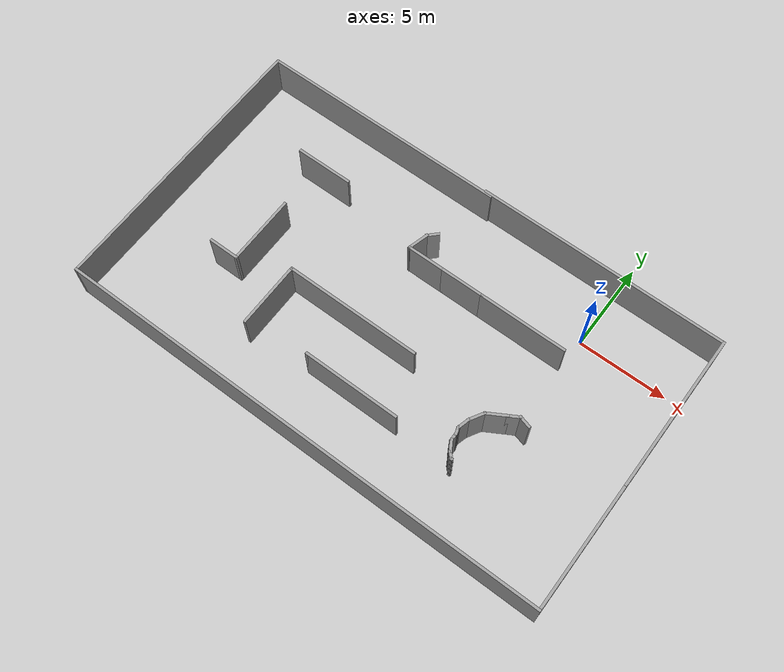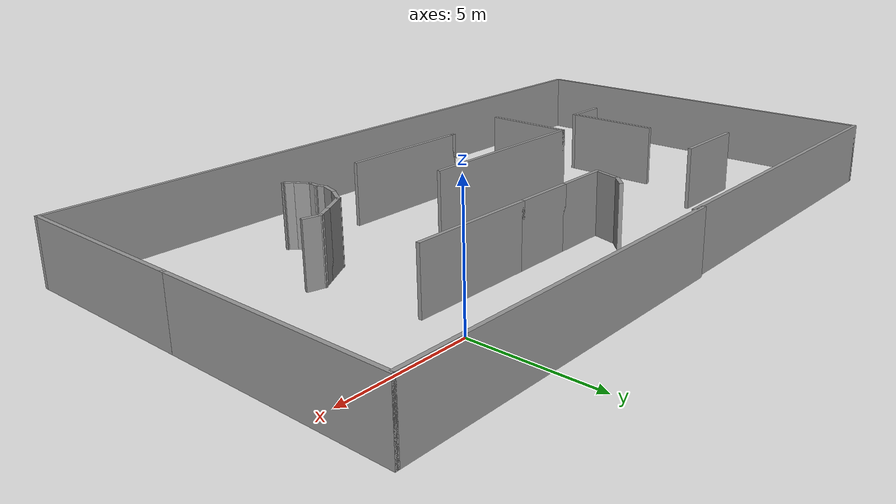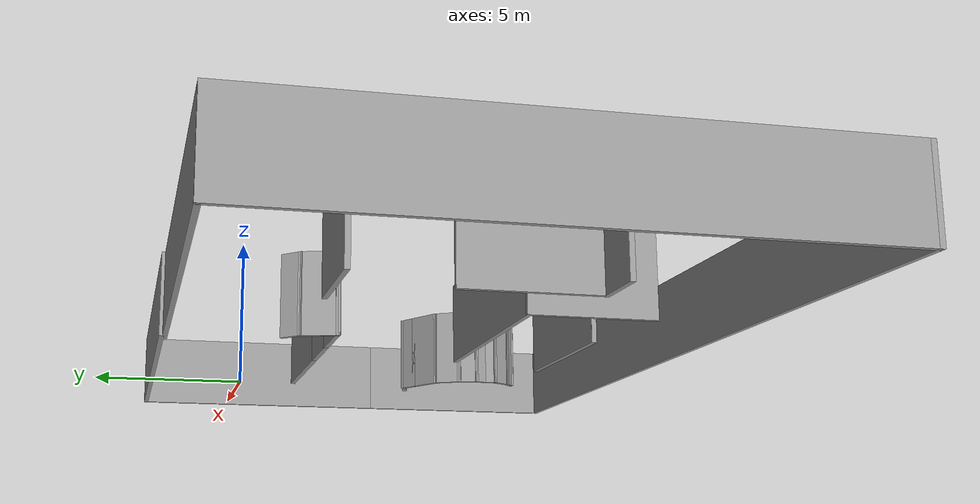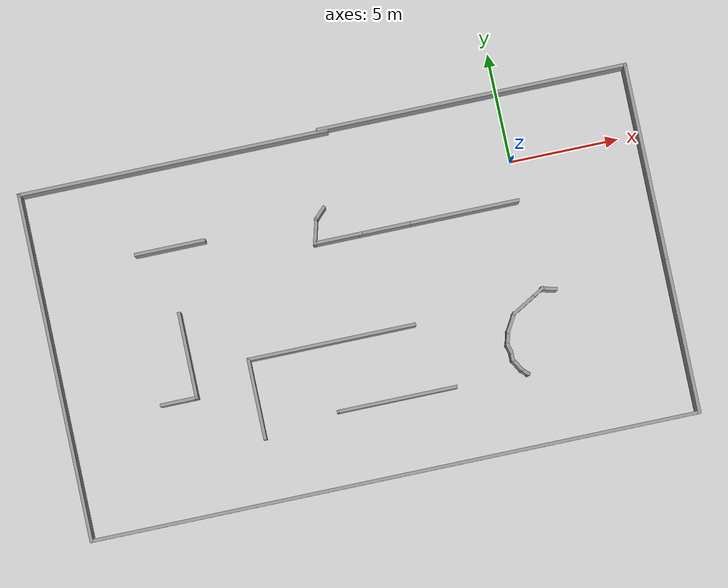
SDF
<?xml version='1.0'?>
<sdf version='1.7'>
  <model name='my_model'>
    <pose>-8.06344 -4.88297 0 0 -0 0</pose>
    <link name='Wall_10'>
      <collision name='Wall_10_Collision'>
        <geometry>
          <box>
            <size>16 0.15 2.5</size>
          </box>
        </geometry>
        <pose>0 0 1.25 0 -0 0</pose>
      </collision>
      <visual name='Wall_10_Visual'>
        <pose>0 0 1.25 0 -0 0</pose>
        <geometry>
          <box>
            <size>16 0.15 2.5</size>
          </box>
        </geometry>
        <material>
          <script>
            <uri>file://media/materials/scripts/gazebo.material</uri>
            <name>Gazebo/Grey</name>
          </script>
          <ambient>1 1 1 1</ambient>
        </material>
        <meta>
          <layer>0</layer>
        </meta>
      </visual>
      <pose>-13.925 -0.049999 0 0 -0 1.5708</pose>
    </link>
    <link name='Wall_11'>
      <collision name='Wall_11_Collision'>
        <geometry>
          <box>
            <size>14.25 0.15 2.5</size>
          </box>
        </geometry>
        <pose>0 0 1.25 0 -0 0</pose>
      </collision>
      <visual name='Wall_11_Visual'>
        <pose>0 0 1.25 0 -0 0</pose>
        <geometry>
          <box>
            <size>14.25 0.15 2.5</size>
          </box>
        </geometry>
        <material>
          <script>
            <uri>file://media/materials/scripts/gazebo.material</uri>
            <name>Gazebo/Grey</name>
          </script>
          <ambient>1 1 1 1</ambient>
        </material>
        <meta>
          <layer>0</layer>
        </meta>
      </visual>
      <pose>-6.875 7.875 0 0 -0 0</pose>
    </link>
    <link name='Wall_13'>
      <collision name='Wall_13_Collision'>
        <geometry>
          <box>
            <size>3.25 0.15 2.5</size>
          </box>
        </geometry>
        <pose>0 0 1.25 0 -0 0</pose>
      </collision>
      <visual name='Wall_13_Visual'>
        <pose>0 0 1.25 0 -0 0</pose>
        <geometry>
          <box>
            <size>3.25 0.15 2.5</size>
          </box>
        </geometry>
        <material>
          <script>
            <uri>file://media/materials/scripts/gazebo.material</uri>
            <name>Gazebo/Grey</name>
          </script>
          <ambient>1 1 1 1</ambient>
        </material>
        <meta>
          <layer>0</layer>
        </meta>
      </visual>
      <pose>-7.77695 4.17656 0 0 -0 0</pose>
    </link>
    <link name='Wall_15'>
      <collision name='Wall_15_Collision'>
        <geometry>
          <box>
            <size>4 0.15 2.5</size>
          </box>
        </geometry>
        <pose>0 0 1.25 0 -0 0</pose>
      </collision>
      <visual name='Wall_15_Visual'>
        <pose>0 0 1.25 0 -0 0</pose>
        <geometry>
          <box>
            <size>4 0.15 2.5</size>
          </box>
        </geometry>
        <material>
          <script>
            <uri>file://media/materials/scripts/gazebo.material</uri>
            <name>Gazebo/Grey</name>
          </script>
          <ambient>1 1 1 1</ambient>
        </material>
        <meta>
          <layer>0</layer>
        </meta>
      </visual>
      <pose>-7.98938 -0.744584 0 0 -0 -1.5708</pose>
    </link>
    <link name='Wall_16'>
      <collision name='Wall_16_Collision'>
        <geometry>
          <box>
            <size>1.75 0.15 2.5</size>
          </box>
        </geometry>
        <pose>0 0 1.25 0 -0 0</pose>
      </collision>
      <visual name='Wall_16_Visual'>
        <pose>0 0 1.25 0 -0 0</pose>
        <geometry>
          <box>
            <size>1.75 0.15 2.5</size>
          </box>
        </geometry>
        <material>
          <script>
            <uri>file://media/materials/scripts/gazebo.material</uri>
            <name>Gazebo/Grey</name>
          </script>
          <ambient>1 1 1 1</ambient>
        </material>
        <meta>
          <layer>0</layer>
        </meta>
      </visual>
      <pose>-8.78938 -2.66958 0 0 -0 3.14159</pose>
    </link>
    <link name='Wall_18'>
      <collision name='Wall_18_Collision'>
        <geometry>
          <box>
            <size>3.75 0.15 2.5</size>
          </box>
        </geometry>
        <pose>0 0 1.25 0 -0 0</pose>
      </collision>
      <visual name='Wall_18_Visual'>
        <pose>0 0 1.25 0 -0 0</pose>
        <geometry>
          <box>
            <size>3.75 0.15 2.5</size>
          </box>
        </geometry>
        <material>
          <script>
            <uri>file://media/materials/scripts/gazebo.material</uri>
            <name>Gazebo/Grey</name>
          </script>
          <ambient>1 1 1 1</ambient>
        </material>
        <meta>
          <layer>0</layer>
        </meta>
      </visual>
      <pose>-5.36776 -3.27938 0 0 -0 1.5708</pose>
    </link>
    <link name='Wall_19'>
      <collision name='Wall_19_Collision'>
        <geometry>
          <box>
            <size>7.75 0.15 2.5</size>
          </box>
        </geometry>
        <pose>0 0 1.25 0 -0 0</pose>
      </collision>
      <visual name='Wall_19_Visual'>
        <pose>0 0 1.25 0 -0 0</pose>
        <geometry>
          <box>
            <size>7.75 0.15 2.5</size>
          </box>
        </geometry>
        <material>
          <script>
            <uri>file://media/materials/scripts/gazebo.material</uri>
            <name>Gazebo/Grey</name>
          </script>
          <ambient>1 1 1 1</ambient>
        </material>
        <meta>
          <layer>0</layer>
        </meta>
      </visual>
      <pose>-1.56776 -1.47938 0 0 -0 0</pose>
    </link>
    <link name='Wall_21'>
      <collision name='Wall_21_Collision'>
        <geometry>
          <box>
            <size>0.16 0.15 2.5</size>
          </box>
        </geometry>
        <pose>0 0 1.25 0 -0 0</pose>
      </collision>
      <visual name='Wall_21_Visual'>
        <pose>0 0 1.25 0 -0 0</pose>
        <geometry>
          <box>
            <size>0.16 0.15 2.5</size>
          </box>
        </geometry>
        <material>
          <script>
            <uri>file://media/materials/scripts/gazebo.material</uri>
            <name>Gazebo/Grey</name>
          </script>
          <ambient>1 1 1 1</ambient>
        </material>
        <meta>
          <layer>0</layer>
        </meta>
      </visual>
      <pose>-1.8851 -4.59785 0 0 -0 0</pose>
    </link>
    <link name='Wall_22'>
      <collision name='Wall_22_Collision'>
        <geometry>
          <box>
            <size>5.5 0.15 2.5</size>
          </box>
        </geometry>
        <pose>0 0 1.25 0 -0 0</pose>
      </collision>
      <visual name='Wall_22_Visual'>
        <pose>0 0 1.25 0 -0 0</pose>
        <geometry>
          <box>
            <size>5.5 0.15 2.5</size>
          </box>
        </geometry>
        <material>
          <script>
            <uri>file://media/materials/scripts/gazebo.material</uri>
            <name>Gazebo/Grey</name>
          </script>
          <ambient>1 1 1 1</ambient>
        </material>
        <meta>
          <layer>0</layer>
        </meta>
      </visual>
      <pose>0.794901 -4.59785 0 0 -0 0</pose>
    </link>
    <link name='Wall_24'>
      <collision name='Wall_24_Collision'>
        <geometry>
          <box>
            <size>0.16 0.15 2.5</size>
          </box>
        </geometry>
        <pose>0 0 1.25 0 -0 0</pose>
      </collision>
      <visual name='Wall_24_Visual'>
        <pose>0 0 1.25 0 -0 0</pose>
        <geometry>
          <box>
            <size>0.16 0.15 2.5</size>
          </box>
        </geometry>
        <material>
          <script>
            <uri>file://media/materials/scripts/gazebo.material</uri>
            <name>Gazebo/Grey</name>
          </script>
          <ambient>1 1 1 1</ambient>
        </material>
        <meta>
          <layer>0</layer>
        </meta>
      </visual>
      <pose>6.78231 -4.70486 0 0 -0 0</pose>
    </link>
    <link name='Wall_25'>
      <collision name='Wall_25_Collision'>
        <geometry>
          <box>
            <size>0.5 0.15 2.5</size>
          </box>
        </geometry>
        <pose>0 0 1.25 0 -0 0</pose>
      </collision>
      <visual name='Wall_25_Visual'>
        <pose>0 0 1.25 0 -0 0</pose>
        <geometry>
          <box>
            <size>0.5 0.15 2.5</size>
          </box>
        </geometry>
        <material>
          <script>
            <uri>file://media/materials/scripts/gazebo.material</uri>
            <name>Gazebo/Grey</name>
          </script>
          <ambient>1 1 1 1</ambient>
        </material>
        <meta>
          <layer>0</layer>
        </meta>
      </visual>
      <pose>6.66356 -4.58111 0 0 -0 2.35619</pose>
    </link>
    <link name='Wall_26'>
      <collision name='Wall_26_Collision'>
        <geometry>
          <box>
            <size>0.75 0.15 2.5</size>
          </box>
        </geometry>
        <pose>0 0 1.25 0 -0 0</pose>
      </collision>
      <visual name='Wall_26_Visual'>
        <pose>0 0 1.25 0 -0 0</pose>
        <geometry>
          <box>
            <size>0.75 0.15 2.5</size>
          </box>
        </geometry>
        <material>
          <script>
            <uri>file://media/materials/scripts/gazebo.material</uri>
            <name>Gazebo/Grey</name>
          </script>
          <ambient>1 1 1 1</ambient>
        </material>
        <meta>
          <layer>0</layer>
        </meta>
      </visual>
      <pose>6.38982 -4.19756 0 0 -0 2.0944</pose>
    </link>
    <link name='Wall_27'>
      <collision name='Wall_27_Collision'>
        <geometry>
          <box>
            <size>0.5 0.15 2.5</size>
          </box>
        </geometry>
        <pose>0 0 1.25 0 -0 0</pose>
      </collision>
      <visual name='Wall_27_Visual'>
        <pose>0 0 1.25 0 -0 0</pose>
        <geometry>
          <box>
            <size>0.5 0.15 2.5</size>
          </box>
        </geometry>
        <material>
          <script>
            <uri>file://media/materials/scripts/gazebo.material</uri>
            <name>Gazebo/Grey</name>
          </script>
          <ambient>1 1 1 1</ambient>
        </material>
        <meta>
          <layer>0</layer>
        </meta>
      </visual>
      <pose>6.23982 -3.76276 0 0 -0 1.5708</pose>
    </link>
    <link name='Wall_28'>
      <collision name='Wall_28_Collision'>
        <geometry>
          <box>
            <size>0.5 0.15 2.5</size>
          </box>
        </geometry>
        <pose>0 0 1.25 0 -0 0</pose>
      </collision>
      <visual name='Wall_28_Visual'>
        <pose>0 0 1.25 0 -0 0</pose>
        <geometry>
          <box>
            <size>0.5 0.15 2.5</size>
          </box>
        </geometry>
        <material>
          <script>
            <uri>file://media/materials/scripts/gazebo.material</uri>
            <name>Gazebo/Grey</name>
          </script>
          <ambient>1 1 1 1</ambient>
        </material>
        <meta>
          <layer>0</layer>
        </meta>
      </visual>
      <pose>6.19453 -3.41872 0 0 -0 1.8326</pose>
    </link>
    <link name='Wall_29'>
      <collision name='Wall_29_Collision'>
        <geometry>
          <box>
            <size>0.75 0.15 2.5</size>
          </box>
        </geometry>
        <pose>0 0 1.25 0 -0 0</pose>
      </collision>
      <visual name='Wall_29_Visual'>
        <pose>0 0 1.25 0 -0 0</pose>
        <geometry>
          <box>
            <size>0.75 0.15 2.5</size>
          </box>
        </geometry>
        <material>
          <script>
            <uri>file://media/materials/scripts/gazebo.material</uri>
            <name>Gazebo/Grey</name>
          </script>
          <ambient>1 1 1 1</ambient>
        </material>
        <meta>
          <layer>0</layer>
        </meta>
      </visual>
      <pose>6.22688 -2.9599 0 0 -0 1.309</pose>
    </link>
    <link name='Wall_30'>
      <collision name='Wall_30_Collision'>
        <geometry>
          <box>
            <size>1 0.15 2.5</size>
          </box>
        </geometry>
        <pose>0 0 1.25 0 -0 0</pose>
      </collision>
      <visual name='Wall_30_Visual'>
        <pose>0 0 1.25 0 -0 0</pose>
        <geometry>
          <box>
            <size>1 0.15 2.5</size>
          </box>
        </geometry>
        <material>
          <script>
            <uri>file://media/materials/scripts/gazebo.material</uri>
            <name>Gazebo/Grey</name>
          </script>
          <ambient>1 1 1 1</ambient>
        </material>
        <meta>
          <layer>0</layer>
        </meta>
      </visual>
      <pose>6.51702 -2.30207 0 0 -0 1.0472</pose>
    </link>
    <link name='Wall_31'>
      <collision name='Wall_31_Collision'>
        <geometry>
          <box>
            <size>1.25 0.15 2.5</size>
          </box>
        </geometry>
        <pose>0 0 1.25 0 -0 0</pose>
      </collision>
      <visual name='Wall_31_Visual'>
        <pose>0 0 1.25 0 -0 0</pose>
        <geometry>
          <box>
            <size>1.25 0.15 2.5</size>
          </box>
        </geometry>
        <material>
          <script>
            <uri>file://media/materials/scripts/gazebo.material</uri>
            <name>Gazebo/Grey</name>
          </script>
          <ambient>1 1 1 1</ambient>
        </material>
        <meta>
          <layer>0</layer>
        </meta>
      </visual>
      <pose>7.20584 -1.65901 0 0 -0 0.523599</pose>
    </link>
    <link name='Wall_32'>
      <collision name='Wall_32_Collision'>
        <geometry>
          <box>
            <size>0.75 0.15 2.5</size>
          </box>
        </geometry>
        <pose>0 0 1.25 0 -0 0</pose>
      </collision>
      <visual name='Wall_32_Visual'>
        <pose>0 0 1.25 0 -0 0</pose>
        <geometry>
          <box>
            <size>0.75 0.15 2.5</size>
          </box>
        </geometry>
        <material>
          <script>
            <uri>file://media/materials/scripts/gazebo.material</uri>
            <name>Gazebo/Grey</name>
          </script>
          <ambient>1 1 1 1</ambient>
        </material>
        <meta>
          <layer>0</layer>
        </meta>
      </visual>
      <pose>7.94196 -1.23401 0 0 -0 0.523599</pose>
    </link>
    <link name='Wall_33'>
      <collision name='Wall_33_Collision'>
        <geometry>
          <box>
            <size>0.75 0.15 2.5</size>
          </box>
        </geometry>
        <pose>0 0 1.25 0 -0 0</pose>
      </collision>
      <visual name='Wall_33_Visual'>
        <pose>0 0 1.25 0 -0 0</pose>
        <geometry>
          <box>
            <size>0.75 0.15 2.5</size>
          </box>
        </geometry>
        <material>
          <script>
            <uri>file://media/materials/scripts/gazebo.material</uri>
            <name>Gazebo/Grey</name>
          </script>
          <ambient>1 1 1 1</ambient>
        </material>
        <meta>
          <layer>0</layer>
        </meta>
      </visual>
      <pose>8.49155 -1.16165 0 0 -0 -0.261799</pose>
    </link>
    <link name='Wall_35'>
      <collision name='Wall_35_Collision'>
        <geometry>
          <box>
            <size>0.75 0.15 2.5</size>
          </box>
        </geometry>
        <pose>0 0 1.25 0 -0 0</pose>
      </collision>
      <visual name='Wall_35_Visual'>
        <pose>0 0 1.25 0 -0 0</pose>
        <geometry>
          <box>
            <size>0.75 0.15 2.5</size>
          </box>
        </geometry>
        <material>
          <script>
            <uri>file://media/materials/scripts/gazebo.material</uri>
            <name>Gazebo/Grey</name>
          </script>
          <ambient>1 1 1 1</ambient>
        </material>
        <meta>
          <layer>0</layer>
        </meta>
      </visual>
      <pose>-0.871673 4.28544 0 0 -0 -2.35619</pose>
    </link>
    <link name='Wall_36'>
      <collision name='Wall_36_Collision'>
        <geometry>
          <box>
            <size>1.25 0.15 2.5</size>
          </box>
        </geometry>
        <pose>0 0 1.25 0 -0 0</pose>
      </collision>
      <visual name='Wall_36_Visual'>
        <pose>0 0 1.25 0 -0 0</pose>
        <geometry>
          <box>
            <size>1.25 0.15 2.5</size>
          </box>
        </geometry>
        <material>
          <script>
            <uri>file://media/materials/scripts/gazebo.material</uri>
            <name>Gazebo/Grey</name>
          </script>
          <ambient>1 1 1 1</ambient>
        </material>
        <meta>
          <layer>0</layer>
        </meta>
      </visual>
      <pose>-1.22616 3.54205 0 0 -0 -1.8326</pose>
    </link>
    <link name='Wall_37'>
      <collision name='Wall_37_Collision'>
        <geometry>
          <box>
            <size>2.25 0.15 2.5</size>
          </box>
        </geometry>
        <pose>0 0 1.25 0 -0 0</pose>
      </collision>
      <visual name='Wall_37_Visual'>
        <pose>0 0 1.25 0 -0 0</pose>
        <geometry>
          <box>
            <size>2.25 0.15 2.5</size>
          </box>
        </geometry>
        <material>
          <script>
            <uri>file://media/materials/scripts/gazebo.material</uri>
            <name>Gazebo/Grey</name>
          </script>
          <ambient>1 1 1 1</ambient>
        </material>
        <meta>
          <layer>0</layer>
        </meta>
      </visual>
      <pose>-0.318506 3.01079 0 0 -0 0</pose>
    </link>
    <link name='Wall_38'>
      <collision name='Wall_38_Collision'>
        <geometry>
          <box>
            <size>2.5 0.15 2.5</size>
          </box>
        </geometry>
        <pose>0 0 1.25 0 -0 0</pose>
      </collision>
      <visual name='Wall_38_Visual'>
        <pose>0 0 1.25 0 -0 0</pose>
        <geometry>
          <box>
            <size>2.5 0.15 2.5</size>
          </box>
        </geometry>
        <material>
          <script>
            <uri>file://media/materials/scripts/gazebo.material</uri>
            <name>Gazebo/Grey</name>
          </script>
          <ambient>1 1 1 1</ambient>
        </material>
        <meta>
          <layer>0</layer>
        </meta>
      </visual>
      <pose>1.90649 3.01079 0 0 -0 0</pose>
    </link>
    <link name='Wall_39'>
      <collision name='Wall_39_Collision'>
        <geometry>
          <box>
            <size>5 0.15 2.5</size>
          </box>
        </geometry>
        <pose>0 0 1.25 0 -0 0</pose>
      </collision>
      <visual name='Wall_39_Visual'>
        <pose>0 0 1.25 0 -0 0</pose>
        <geometry>
          <box>
            <size>5 0.15 2.5</size>
          </box>
        </geometry>
        <material>
          <script>
            <uri>file://media/materials/scripts/gazebo.material</uri>
            <name>Gazebo/Grey</name>
          </script>
          <ambient>1 1 1 1</ambient>
        </material>
        <meta>
          <layer>0</layer>
        </meta>
      </visual>
      <pose>5.50649 3.01079 0 0 -0 0</pose>
    </link>
    <link name='Wall_6'>
      <collision name='Wall_6_Collision'>
        <geometry>
          <box>
            <size>14.25 0.15 2.5</size>
          </box>
        </geometry>
        <pose>0 0 1.25 0 -0 0</pose>
      </collision>
      <visual name='Wall_6_Visual'>
        <pose>0 0 1.25 0 -0 0</pose>
        <geometry>
          <box>
            <size>14.25 0.15 2.5</size>
          </box>
        </geometry>
        <material>
          <script>
            <uri>file://media/materials/scripts/gazebo.material</uri>
            <name>Gazebo/Grey</name>
          </script>
          <ambient>1 1 1 1</ambient>
        </material>
        <meta>
          <layer>0</layer>
        </meta>
      </visual>
      <pose>6.875 7.975 0 0 -0 0</pose>
    </link>
    <link name='Wall_7'>
      <collision name='Wall_7_Collision'>
        <geometry>
          <box>
            <size>9 0.15 2.5</size>
          </box>
        </geometry>
        <pose>0 0 1.25 0 -0 0</pose>
      </collision>
      <visual name='Wall_7_Visual'>
        <pose>0 0 1.25 0 -0 0</pose>
        <geometry>
          <box>
            <size>9 0.15 2.5</size>
          </box>
        </geometry>
        <material>
          <script>
            <uri>file://media/materials/scripts/gazebo.material</uri>
            <name>Gazebo/Grey</name>
          </script>
          <ambient>1 1 1 1</ambient>
        </material>
        <meta>
          <layer>0</layer>
        </meta>
      </visual>
      <pose>13.925 3.55 0 0 -0 -1.5708</pose>
    </link>
    <link name='Wall_8'>
      <collision name='Wall_8_Collision'>
        <geometry>
          <box>
            <size>7.25 0.15 2.5</size>
          </box>
        </geometry>
        <pose>0 0 1.25 0 -0 0</pose>
      </collision>
      <visual name='Wall_8_Visual'>
        <pose>0 0 1.25 0 -0 0</pose>
        <geometry>
          <box>
            <size>7.25 0.15 2.5</size>
          </box>
        </geometry>
        <material>
          <script>
            <uri>file://media/materials/scripts/gazebo.material</uri>
            <name>Gazebo/Grey</name>
          </script>
          <ambient>1 1 1 1</ambient>
        </material>
        <meta>
          <layer>0</layer>
        </meta>
      </visual>
      <pose>13.925 -4.425 0 0 -0 -1.5708</pose>
    </link>
    <link name='Wall_9'>
      <collision name='Wall_9_Collision'>
        <geometry>
          <box>
            <size>28 0.15 2.5</size>
          </box>
        </geometry>
        <pose>0 0 1.25 0 -0 0</pose>
      </collision>
      <visual name='Wall_9_Visual'>
        <pose>0 0 1.25 0 -0 0</pose>
        <geometry>
          <box>
            <size>28 0.15 2.5</size>
          </box>
        </geometry>
        <material>
          <script>
            <uri>file://media/materials/scripts/gazebo.material</uri>
            <name>Gazebo/Grey</name>
          </script>
          <ambient>1 1 1 1</ambient>
        </material>
        <meta>
          <layer>0</layer>
        </meta>
      </visual>
      <pose>1e-06 -7.975 0 0 -0 3.14159</pose>
    </link>
    <static>1</static>
  </model>
</sdf>
